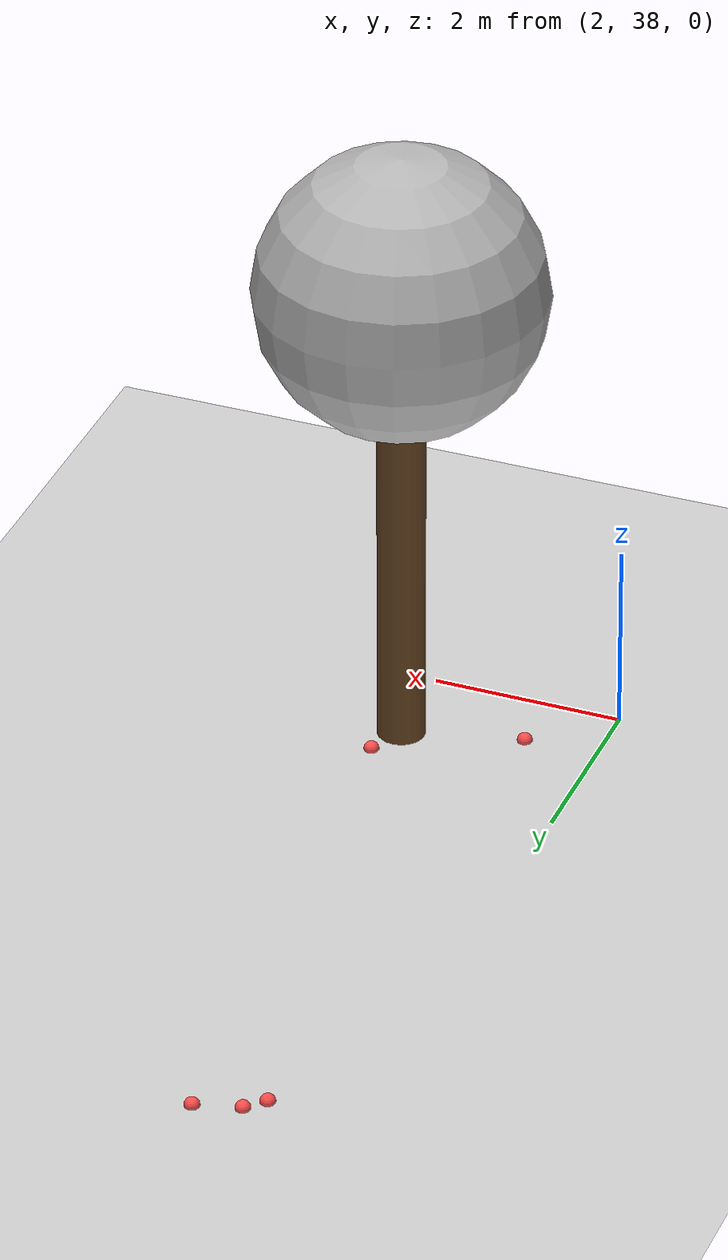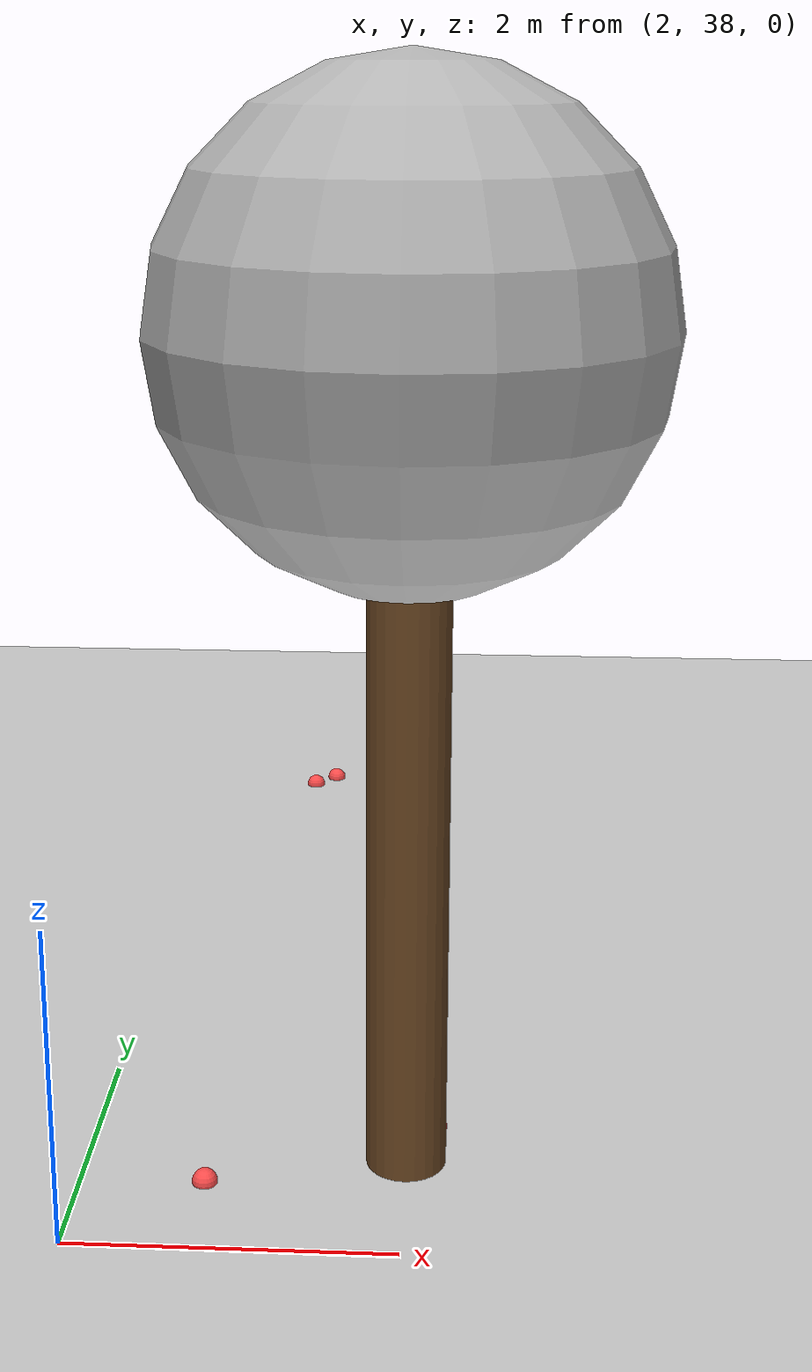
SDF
<sdf version="1.7">
 <world name="default">
  <model name="ground_plane">
   <static>1</static>
   <link name="link">
    <collision name="collision">
     <geometry><plane><normal>0 0 1</normal><size>100 100</size></plane></geometry>
     <surface>
      <contact><collide_bitmask>65535</collide_bitmask></contact>
      <friction><ode><mu>100</mu><mu2>50</mu2></ode></friction>
     </surface>
    </collision>
    <visual name="visual">
     <cast_shadows>0</cast_shadows>
     <geometry><plane><normal>0 0 1</normal><size>100 100</size></plane></geometry>
     <material>
      <script><uri>file://media/materials/scripts/gazebo.material</uri><name>Gazebo/Grey</name></script>
     </material>
    </visual>
   </link>
  </model>
  <model name="tree_simple_16">
   <static>1</static>
   <link name="link">
    <pose>0 0 0.1 0 -0 0</pose>
    <inertial>
     <mass>666</mass>
     <inertia>
      <ixx>0.0861167</ixx>
      <ixy>0</ixy>
      <ixz>0</ixz>
      <iyy>0.0861167</iyy>
      <iyz>0</iyz>
      <izz>0.0861167</izz>
     </inertia>
    </inertial>
    <collision name="collision_trunk">
     <pose>0 0 2 0 -0 0</pose>
     <geometry><cylinder><radius>0.25</radius><length>4</length></cylinder></geometry>
     <surface>
      <contact>
       <poissons_ratio>0.347</poissons_ratio>
       <elastic_modulus>8.8e+09</elastic_modulus>
       <ode><kp>100000</kp><kd>100</kd><max_vel>100</max_vel><min_depth>0.001</min_depth></ode>
      </contact>
      <friction>
       <torsional>
        <coefficient>1</coefficient>
        <use_patch_radius>0</use_patch_radius>
        <surface_radius>0.01</surface_radius>
       </torsional>
      </friction>
     </surface>
    </collision>
    <collision name="collision_treetop">
     <pose>0 0 5.2 0 -0 0</pose>
     <geometry><sphere><radius>1.5</radius></sphere></geometry>
     <surface>
      <contact>
       <poissons_ratio>0.347</poissons_ratio>
       <elastic_modulus>8.8e+09</elastic_modulus>
       <ode><kp>100000</kp><kd>100</kd><max_vel>100</max_vel><min_depth>0.001</min_depth></ode>
      </contact>
      <friction>
       <torsional>
        <coefficient>1</coefficient>
        <use_patch_radius>0</use_patch_radius>
        <surface_radius>0.01</surface_radius>
       </torsional>
      </friction>
     </surface>
    </collision>
    <visual name="trunk">
     <pose>0 0 2 0 -0 0</pose>
     <geometry><cylinder><radius>0.25</radius><length>4</length></cylinder></geometry>
     <material>
      <script>
       <uri>model://tree_simple/scripts</uri>
       <uri>model://tree_simple/materials/textures</uri>
       <name>TreeSimple/Trunk</name>
      </script>
     </material>
    </visual>
    <visual name="treetop">
     <pose>0 0 5.2 0 -0 0</pose>
     <geometry><sphere><radius>1.5</radius></sphere></geometry>
     <material>
      <script>
       <uri>model://tree_simple/scripts</uri>
       <uri>model://tree_simple/materials/textures</uri>
       <name>TreeSimple/Treetop</name>
      </script>
     </material>
    </visual>
   </link>
   <pose>4 39 -0.1 0 -0 0</pose>
  </model>
  <model name="seed_red_17">
   <link name="link">
    <inertial>
     <mass>1</mass>
     <inertia><ixx>0.1</ixx><ixy>0</ixy><ixz>0</ixz><iyy>0.1</iyy><iyz>0</iyz><izz>0.1</izz></inertia>
    </inertial>
    <visual name="visual">
     <geometry><sphere><radius>0.08</radius></sphere></geometry>
     <material>
      <script><name>Gazebo/Grey</name><uri>file://media/materials/scripts/gazebo.material</uri></script>
      <shader type="pixel"><normal_map>__default__</normal_map></shader>
      <ambient>1 0.3 0.3 1</ambient>
      <diffuse>0.7 0.7 0.7 1</diffuse>
      <specular>0.01 0.01 0.01 1</specular>
      <emissive>0 0 0 1</emissive>
     </material>
    </visual>
    <collision name="collision">
     <geometry><sphere><radius>0.0005</radius></sphere></geometry>
     <surface>
      <friction>
       <ode><mu>1</mu><mu2>1</mu2><fdir1>0 0 0</fdir1><slip1>0</slip1><slip2>0</slip2></ode>
       <torsional>
        <coefficient>1</coefficient>
        <patch_radius>0</patch_radius>
        <surface_radius>0</surface_radius>
        <use_patch_radius>1</use_patch_radius>
        <ode><slip>0</slip></ode>
       </torsional>
      </friction>
      <bounce><restitution_coefficient>0</restitution_coefficient><threshold>1e+06</threshold></bounce>
      <contact>
       <collide_without_contact>0</collide_without_contact>
       <collide_without_contact_bitmask>1</collide_without_contact_bitmask>
       <collide_bitmask>1</collide_bitmask>
       <ode>
        <soft_cfm>0</soft_cfm>
        <soft_erp>0.2</soft_erp>
        <kp>1e+13</kp>
        <kd>1</kd>
        <max_vel>0.01</max_vel>
        <min_depth>0</min_depth>
       </ode>
       <bullet>
        <split_impulse>1</split_impulse>
        <split_impulse_penetration_threshold>-0.01</split_impulse_penetration_threshold>
        <soft_cfm>0</soft_cfm>
        <soft_erp>0.2</soft_erp>
        <kp>1e+13</kp>
        <kd>1</kd>
       </bullet>
      </contact>
     </surface>
    </collision>
   </link>
   <static>0</static>
   <pose>2.89747 45.388 0.0005 0 -0 0</pose>
  </model>
  <model name="seed_red_18">
   <link name="link">
    <inertial>
     <mass>1</mass>
     <inertia><ixx>0.1</ixx><ixy>0</ixy><ixz>0</ixz><iyy>0.1</iyy><iyz>0</iyz><izz>0.1</izz></inertia>
    </inertial>
    <visual name="visual">
     <geometry><sphere><radius>0.08</radius></sphere></geometry>
     <material>
      <script><name>Gazebo/Grey</name><uri>file://media/materials/scripts/gazebo.material</uri></script>
      <shader type="pixel"><normal_map>__default__</normal_map></shader>
      <ambient>1 0.3 0.3 1</ambient>
      <diffuse>0.7 0.7 0.7 1</diffuse>
      <specular>0.01 0.01 0.01 1</specular>
      <emissive>0 0 0 1</emissive>
     </material>
    </visual>
    <collision name="collision">
     <geometry><sphere><radius>0.0005</radius></sphere></geometry>
     <surface>
      <friction>
       <ode><mu>1</mu><mu2>1</mu2><fdir1>0 0 0</fdir1><slip1>0</slip1><slip2>0</slip2></ode>
       <torsional>
        <coefficient>1</coefficient>
        <patch_radius>0</patch_radius>
        <surface_radius>0</surface_radius>
        <use_patch_radius>1</use_patch_radius>
        <ode><slip>0</slip></ode>
       </torsional>
      </friction>
      <bounce><restitution_coefficient>0</restitution_coefficient><threshold>1e+06</threshold></bounce>
      <contact>
       <collide_without_contact>0</collide_without_contact>
       <collide_without_contact_bitmask>1</collide_without_contact_bitmask>
       <collide_bitmask>1</collide_bitmask>
       <ode>
        <soft_cfm>0</soft_cfm>
        <soft_erp>0.2</soft_erp>
        <kp>1e+13</kp>
        <kd>1</kd>
        <max_vel>0.01</max_vel>
        <min_depth>0</min_depth>
       </ode>
       <bullet>
        <split_impulse>1</split_impulse>
        <split_impulse_penetration_threshold>-0.01</split_impulse_penetration_threshold>
        <soft_cfm>0</soft_cfm>
        <soft_erp>0.2</soft_erp>
        <kp>1e+13</kp>
        <kd>1</kd>
       </bullet>
      </contact>
     </surface>
    </collision>
   </link>
   <static>0</static>
   <pose>3.55071 45.7013 0.0005 0 -0 0</pose>
  </model>
  <model name="seed_red_22">
   <link name="link">
    <inertial>
     <mass>1</mass>
     <inertia><ixx>0.1</ixx><ixy>0</ixy><ixz>0</ixz><iyy>0.1</iyy><iyz>0</iyz><izz>0.1</izz></inertia>
    </inertial>
    <visual name="visual">
     <geometry><sphere><radius>0.08</radius></sphere></geometry>
     <material>
      <script><name>Gazebo/Grey</name><uri>file://media/materials/scripts/gazebo.material</uri></script>
      <shader type="pixel"><normal_map>__default__</normal_map></shader>
      <ambient>1 0.3 0.3 1</ambient>
      <diffuse>0.7 0.7 0.7 1</diffuse>
      <specular>0.01 0.01 0.01 1</specular>
      <emissive>0 0 0 1</emissive>
     </material>
    </visual>
    <collision name="collision">
     <geometry><sphere><radius>0.0005</radius></sphere></geometry>
     <surface>
      <friction>
       <ode><mu>1</mu><mu2>1</mu2><fdir1>0 0 0</fdir1><slip1>0</slip1><slip2>0</slip2></ode>
       <torsional>
        <coefficient>1</coefficient>
        <patch_radius>0</patch_radius>
        <surface_radius>0</surface_radius>
        <use_patch_radius>1</use_patch_radius>
        <ode><slip>0</slip></ode>
       </torsional>
      </friction>
      <bounce><restitution_coefficient>0</restitution_coefficient><threshold>1e+06</threshold></bounce>
      <contact>
       <collide_without_contact>0</collide_without_contact>
       <collide_without_contact_bitmask>1</collide_without_contact_bitmask>
       <collide_bitmask>1</collide_bitmask>
       <ode>
        <soft_cfm>0</soft_cfm>
        <soft_erp>0.2</soft_erp>
        <kp>1e+13</kp>
        <kd>1</kd>
        <max_vel>0.01</max_vel>
        <min_depth>0</min_depth>
       </ode>
       <bullet>
        <split_impulse>1</split_impulse>
        <split_impulse_penetration_threshold>-0.01</split_impulse_penetration_threshold>
        <soft_cfm>0</soft_cfm>
        <soft_erp>0.2</soft_erp>
        <kp>1e+13</kp>
        <kd>1</kd>
       </bullet>
      </contact>
     </surface>
    </collision>
   </link>
   <static>0</static>
   <pose>3.07991 45.5715 0.0005 0 -0 0</pose>
  </model>
  <model name="seed_red_69">
   <link name="link">
    <inertial>
     <mass>1</mass>
     <inertia><ixx>0.1</ixx><ixy>0</ixy><ixz>0</ixz><iyy>0.1</iyy><iyz>0</iyz><izz>0.1</izz></inertia>
    </inertial>
    <visual name="visual">
     <geometry><sphere><radius>0.08</radius></sphere></geometry>
     <material>
      <script><name>Gazebo/Grey</name><uri>file://media/materials/scripts/gazebo.material</uri></script>
      <shader type="pixel"><normal_map>__default__</normal_map></shader>
      <ambient>1 0.3 0.3 1</ambient>
      <diffuse>0.7 0.7 0.7 1</diffuse>
      <specular>0.01 0.01 0.01 1</specular>
      <emissive>0 0 0 1</emissive>
     </material>
    </visual>
    <collision name="collision">
     <geometry><sphere><radius>0.0005</radius></sphere></geometry>
     <surface>
      <friction>
       <ode><mu>1</mu><mu2>1</mu2><fdir1>0 0 0</fdir1><slip1>0</slip1><slip2>0</slip2></ode>
       <torsional>
        <coefficient>1</coefficient>
        <patch_radius>0</patch_radius>
        <surface_radius>0</surface_radius>
        <use_patch_radius>1</use_patch_radius>
        <ode><slip>0</slip></ode>
       </torsional>
      </friction>
      <bounce><restitution_coefficient>0</restitution_coefficient><threshold>1e+06</threshold></bounce>
      <contact>
       <collide_without_contact>0</collide_without_contact>
       <collide_without_contact_bitmask>1</collide_without_contact_bitmask>
       <collide_bitmask>1</collide_bitmask>
       <ode>
        <soft_cfm>0</soft_cfm>
        <soft_erp>0.2</soft_erp>
        <kp>1e+13</kp>
        <kd>1</kd>
        <max_vel>0.01</max_vel>
        <min_depth>0</min_depth>
       </ode>
       <bullet>
        <split_impulse>1</split_impulse>
        <split_impulse_penetration_threshold>-0.01</split_impulse_penetration_threshold>
        <soft_cfm>0</soft_cfm>
        <soft_erp>0.2</soft_erp>
        <kp>1e+13</kp>
        <kd>1</kd>
       </bullet>
      </contact>
     </surface>
    </collision>
   </link>
   <static>0</static>
   <pose>2.77033 38.6924 0.0005 0 -0 0</pose>
  </model>
  <model name="seed_red_70">
   <link name="link">
    <inertial>
     <mass>1</mass>
     <inertia><ixx>0.1</ixx><ixy>0</ixy><ixz>0</ixz><iyy>0.1</iyy><iyz>0</iyz><izz>0.1</izz></inertia>
    </inertial>
    <visual name="visual">
     <geometry><sphere><radius>0.08</radius></sphere></geometry>
     <material>
      <script><name>Gazebo/Grey</name><uri>file://media/materials/scripts/gazebo.material</uri></script>
      <shader type="pixel"><normal_map>__default__</normal_map></shader>
      <ambient>1 0.3 0.3 1</ambient>
      <diffuse>0.7 0.7 0.7 1</diffuse>
      <specular>0.01 0.01 0.01 1</specular>
      <emissive>0 0 0 1</emissive>
     </material>
    </visual>
    <collision name="collision">
     <geometry><sphere><radius>0.0005</radius></sphere></geometry>
     <surface>
      <friction>
       <ode><mu>1</mu><mu2>1</mu2><fdir1>0 0 0</fdir1><slip1>0</slip1><slip2>0</slip2></ode>
       <torsional>
        <coefficient>1</coefficient>
        <patch_radius>0</patch_radius>
        <surface_radius>0</surface_radius>
        <use_patch_radius>1</use_patch_radius>
        <ode><slip>0</slip></ode>
       </torsional>
      </friction>
      <bounce><restitution_coefficient>0</restitution_coefficient><threshold>1e+06</threshold></bounce>
      <contact>
       <collide_without_contact>0</collide_without_contact>
       <collide_without_contact_bitmask>1</collide_without_contact_bitmask>
       <collide_bitmask>1</collide_bitmask>
       <ode>
        <soft_cfm>0</soft_cfm>
        <soft_erp>0.2</soft_erp>
        <kp>1e+13</kp>
        <kd>1</kd>
        <max_vel>0.01</max_vel>
        <min_depth>0</min_depth>
       </ode>
       <bullet>
        <split_impulse>1</split_impulse>
        <split_impulse_penetration_threshold>-0.01</split_impulse_penetration_threshold>
        <soft_cfm>0</soft_cfm>
        <soft_erp>0.2</soft_erp>
        <kp>1e+13</kp>
        <kd>1</kd>
       </bullet>
      </contact>
     </surface>
    </collision>
   </link>
   <static>0</static>
   <pose>4.17341 39.3981 0.0005 0 -0 0</pose>
  </model>
 </world>
</sdf>
